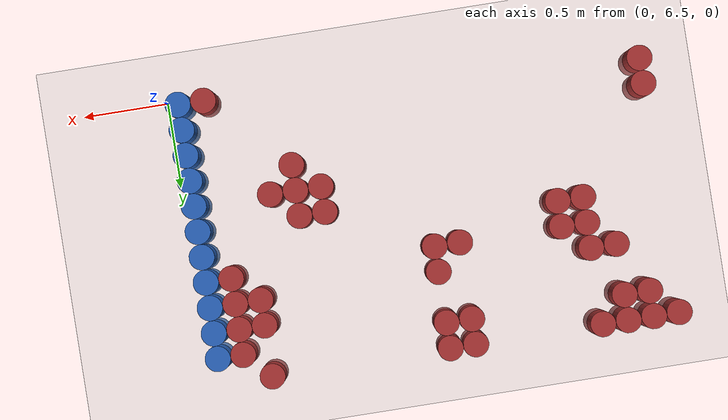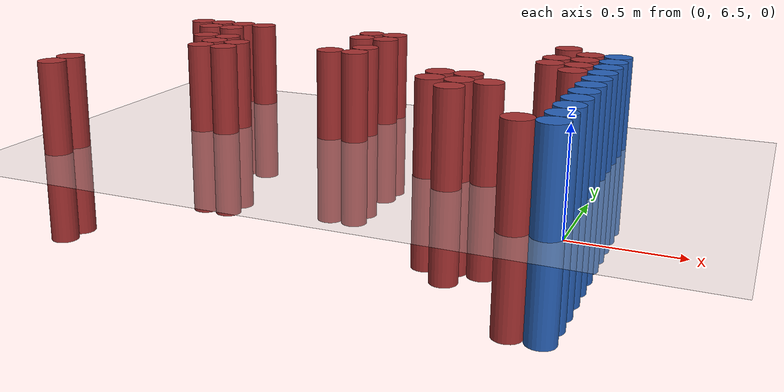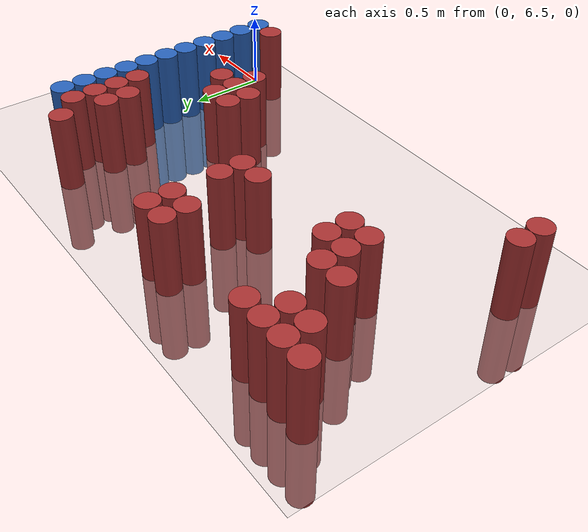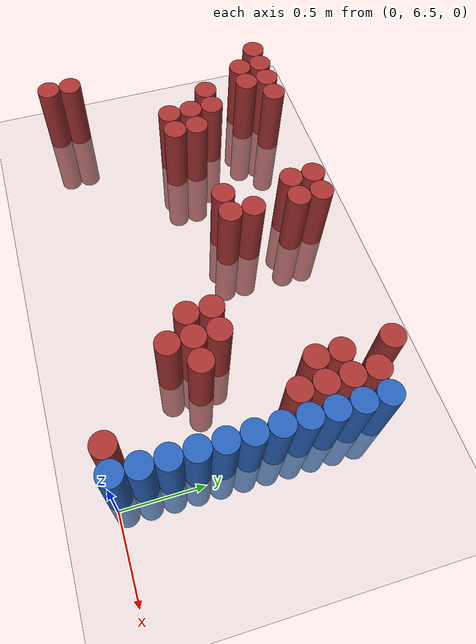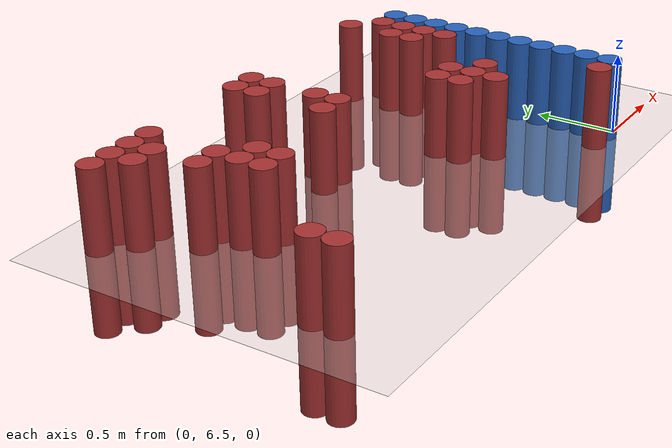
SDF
<sdf version="1.6">
 <world name="default">
  <model name="ground_plane">
   <static>1</static>
   <link name="link">
    <collision name="collision">
     <geometry><plane><normal>0 0 1</normal><size>100 100</size></plane></geometry>
     <surface><friction><ode><mu>100</mu><mu2>50</mu2></ode></friction></surface>
    </collision>
    <visual name="visual">
     <cast_shadows>0</cast_shadows>
     <geometry><plane><normal>0 0 1</normal><size>100 100</size></plane></geometry>
     <material>
      <script><uri>file://media/materials/scripts/gazebo.material</uri><name>Gazebo/Grey</name></script>
     </material>
    </visual>
   </link>
  </model>
  <model name="unit_cylinder_160">
   <static>1</static>
   <pose>-2.775000 6.675000 0.000000 0.000000 0.000000 0.000000</pose>
   <link name="link">
    <inertial>
     <mass>1</mass>
     <inertia><ixx>0.145833</ixx><ixy>0</ixy><ixz>0</ixz><iyy>0.145833</iyy><iyz>0</iyz><izz>0.125</izz></inertia>
    </inertial>
    <collision name="collision">
     <geometry><cylinder><radius>0.075000</radius><length>1</length></cylinder></geometry>
    </collision>
    <visual name="visual">
     <geometry><cylinder><radius>0.075000</radius><length>1</length></cylinder></geometry>
     <material>
      <ambient>0.648000 0.192000 0.192000 1</ambient>
      <diffuse>0.648000 0.192000 0.192000 1</diffuse>
     </material>
     <material>
      <script><name>Gazebo/Grey</name><uri>file://media/materials/scripts/gazebo.material</uri></script>
     </material>
    </visual>
   </link>
  </model>
  <model name="unit_cylinder_161">
   <static>1</static>
   <pose>-2.775000 6.825000 0.000000 0.000000 0.000000 0.000000</pose>
   <link name="link">
    <inertial>
     <mass>1</mass>
     <inertia><ixx>0.145833</ixx><ixy>0</ixy><ixz>0</ixz><iyy>0.145833</iyy><iyz>0</iyz><izz>0.125</izz></inertia>
    </inertial>
    <collision name="collision">
     <geometry><cylinder><radius>0.075000</radius><length>1</length></cylinder></geometry>
    </collision>
    <visual name="visual">
     <geometry><cylinder><radius>0.075000</radius><length>1</length></cylinder></geometry>
     <material>
      <ambient>0.648000 0.192000 0.192000 1</ambient>
      <diffuse>0.648000 0.192000 0.192000 1</diffuse>
     </material>
     <material>
      <script><name>Gazebo/Grey</name><uri>file://media/materials/scripts/gazebo.material</uri></script>
     </material>
    </visual>
   </link>
  </model>
  <model name="unit_cylinder_162">
   <static>1</static>
   <pose>-2.775000 8.175000 0.000000 0.000000 0.000000 0.000000</pose>
   <link name="link">
    <inertial>
     <mass>1</mass>
     <inertia><ixx>0.145833</ixx><ixy>0</ixy><ixz>0</ixz><iyy>0.145833</iyy><iyz>0</iyz><izz>0.125</izz></inertia>
    </inertial>
    <collision name="collision">
     <geometry><cylinder><radius>0.075000</radius><length>1</length></cylinder></geometry>
    </collision>
    <visual name="visual">
     <geometry><cylinder><radius>0.075000</radius><length>1</length></cylinder></geometry>
     <material>
      <ambient>0.648000 0.192000 0.192000 1</ambient>
      <diffuse>0.648000 0.192000 0.192000 1</diffuse>
     </material>
     <material>
      <script><name>Gazebo/Grey</name><uri>file://media/materials/scripts/gazebo.material</uri></script>
     </material>
    </visual>
   </link>
  </model>
  <model name="unit_cylinder_165">
   <static>1</static>
   <pose>-2.625000 8.025000 0.000000 0.000000 0.000000 0.000000</pose>
   <link name="link">
    <inertial>
     <mass>1</mass>
     <inertia><ixx>0.145833</ixx><ixy>0</ixy><ixz>0</ixz><iyy>0.145833</iyy><iyz>0</iyz><izz>0.125</izz></inertia>
    </inertial>
    <collision name="collision">
     <geometry><cylinder><radius>0.075000</radius><length>1</length></cylinder></geometry>
    </collision>
    <visual name="visual">
     <geometry><cylinder><radius>0.075000</radius><length>1</length></cylinder></geometry>
     <material>
      <ambient>0.648000 0.192000 0.192000 1</ambient>
      <diffuse>0.648000 0.192000 0.192000 1</diffuse>
     </material>
     <material>
      <script><name>Gazebo/Grey</name><uri>file://media/materials/scripts/gazebo.material</uri></script>
     </material>
    </visual>
   </link>
  </model>
  <model name="unit_cylinder_166">
   <static>1</static>
   <pose>-2.625000 8.175000 0.000000 0.000000 0.000000 0.000000</pose>
   <link name="link">
    <inertial>
     <mass>1</mass>
     <inertia><ixx>0.145833</ixx><ixy>0</ixy><ixz>0</ixz><iyy>0.145833</iyy><iyz>0</iyz><izz>0.125</izz></inertia>
    </inertial>
    <collision name="collision">
     <geometry><cylinder><radius>0.075000</radius><length>1</length></cylinder></geometry>
    </collision>
    <visual name="visual">
     <geometry><cylinder><radius>0.075000</radius><length>1</length></cylinder></geometry>
     <material>
      <ambient>0.648000 0.192000 0.192000 1</ambient>
      <diffuse>0.648000 0.192000 0.192000 1</diffuse>
     </material>
     <material>
      <script><name>Gazebo/Grey</name><uri>file://media/materials/scripts/gazebo.material</uri></script>
     </material>
    </visual>
   </link>
  </model>
  <model name="unit_cylinder_170">
   <static>1</static>
   <pose>-2.475000 7.725000 0.000000 0.000000 0.000000 0.000000</pose>
   <link name="link">
    <inertial>
     <mass>1</mass>
     <inertia><ixx>0.145833</ixx><ixy>0</ixy><ixz>0</ixz><iyy>0.145833</iyy><iyz>0</iyz><izz>0.125</izz></inertia>
    </inertial>
    <collision name="collision">
     <geometry><cylinder><radius>0.075000</radius><length>1</length></cylinder></geometry>
    </collision>
    <visual name="visual">
     <geometry><cylinder><radius>0.075000</radius><length>1</length></cylinder></geometry>
     <material>
      <ambient>0.648000 0.192000 0.192000 1</ambient>
      <diffuse>0.648000 0.192000 0.192000 1</diffuse>
     </material>
     <material>
      <script><name>Gazebo/Grey</name><uri>file://media/materials/scripts/gazebo.material</uri></script>
     </material>
    </visual>
   </link>
  </model>
  <model name="unit_cylinder_171">
   <static>1</static>
   <pose>-2.475000 8.025000 0.000000 0.000000 0.000000 0.000000</pose>
   <link name="link">
    <inertial>
     <mass>1</mass>
     <inertia><ixx>0.145833</ixx><ixy>0</ixy><ixz>0</ixz><iyy>0.145833</iyy><iyz>0</iyz><izz>0.125</izz></inertia>
    </inertial>
    <collision name="collision">
     <geometry><cylinder><radius>0.075000</radius><length>1</length></cylinder></geometry>
    </collision>
    <visual name="visual">
     <geometry><cylinder><radius>0.075000</radius><length>1</length></cylinder></geometry>
     <material>
      <ambient>0.648000 0.192000 0.192000 1</ambient>
      <diffuse>0.648000 0.192000 0.192000 1</diffuse>
     </material>
     <material>
      <script><name>Gazebo/Grey</name><uri>file://media/materials/scripts/gazebo.material</uri></script>
     </material>
    </visual>
   </link>
  </model>
  <model name="unit_cylinder_172">
   <static>1</static>
   <pose>-2.475000 8.175000 0.000000 0.000000 0.000000 0.000000</pose>
   <link name="link">
    <inertial>
     <mass>1</mass>
     <inertia><ixx>0.145833</ixx><ixy>0</ixy><ixz>0</ixz><iyy>0.145833</iyy><iyz>0</iyz><izz>0.125</izz></inertia>
    </inertial>
    <collision name="collision">
     <geometry><cylinder><radius>0.075000</radius><length>1</length></cylinder></geometry>
    </collision>
    <visual name="visual">
     <geometry><cylinder><radius>0.075000</radius><length>1</length></cylinder></geometry>
     <material>
      <ambient>0.648000 0.192000 0.192000 1</ambient>
      <diffuse>0.648000 0.192000 0.192000 1</diffuse>
     </material>
     <material>
      <script><name>Gazebo/Grey</name><uri>file://media/materials/scripts/gazebo.material</uri></script>
     </material>
    </visual>
   </link>
  </model>
  <model name="unit_cylinder_179">
   <static>1</static>
   <pose>-2.325000 7.425000 0.000000 0.000000 0.000000 0.000000</pose>
   <link name="link">
    <inertial>
     <mass>1</mass>
     <inertia><ixx>0.145833</ixx><ixy>0</ixy><ixz>0</ixz><iyy>0.145833</iyy><iyz>0</iyz><izz>0.125</izz></inertia>
    </inertial>
    <collision name="collision">
     <geometry><cylinder><radius>0.075000</radius><length>1</length></cylinder></geometry>
    </collision>
    <visual name="visual">
     <geometry><cylinder><radius>0.075000</radius><length>1</length></cylinder></geometry>
     <material>
      <ambient>0.648000 0.192000 0.192000 1</ambient>
      <diffuse>0.648000 0.192000 0.192000 1</diffuse>
     </material>
     <material>
      <script><name>Gazebo/Grey</name><uri>file://media/materials/scripts/gazebo.material</uri></script>
     </material>
    </visual>
   </link>
  </model>
  <model name="unit_cylinder_180">
   <static>1</static>
   <pose>-2.325000 7.575000 0.000000 0.000000 0.000000 0.000000</pose>
   <link name="link">
    <inertial>
     <mass>1</mass>
     <inertia><ixx>0.145833</ixx><ixy>0</ixy><ixz>0</ixz><iyy>0.145833</iyy><iyz>0</iyz><izz>0.125</izz></inertia>
    </inertial>
    <collision name="collision">
     <geometry><cylinder><radius>0.075000</radius><length>1</length></cylinder></geometry>
    </collision>
    <visual name="visual">
     <geometry><cylinder><radius>0.075000</radius><length>1</length></cylinder></geometry>
     <material>
      <ambient>0.648000 0.192000 0.192000 1</ambient>
      <diffuse>0.648000 0.192000 0.192000 1</diffuse>
     </material>
     <material>
      <script><name>Gazebo/Grey</name><uri>file://media/materials/scripts/gazebo.material</uri></script>
     </material>
    </visual>
   </link>
  </model>
  <model name="unit_cylinder_181">
   <static>1</static>
   <pose>-2.325000 7.725000 0.000000 0.000000 0.000000 0.000000</pose>
   <link name="link">
    <inertial>
     <mass>1</mass>
     <inertia><ixx>0.145833</ixx><ixy>0</ixy><ixz>0</ixz><iyy>0.145833</iyy><iyz>0</iyz><izz>0.125</izz></inertia>
    </inertial>
    <collision name="collision">
     <geometry><cylinder><radius>0.075000</radius><length>1</length></cylinder></geometry>
    </collision>
    <visual name="visual">
     <geometry><cylinder><radius>0.075000</radius><length>1</length></cylinder></geometry>
     <material>
      <ambient>0.648000 0.192000 0.192000 1</ambient>
      <diffuse>0.648000 0.192000 0.192000 1</diffuse>
     </material>
     <material>
      <script><name>Gazebo/Grey</name><uri>file://media/materials/scripts/gazebo.material</uri></script>
     </material>
    </visual>
   </link>
  </model>
  <model name="unit_cylinder_182">
   <static>1</static>
   <pose>-2.325000 8.175000 0.000000 0.000000 0.000000 0.000000</pose>
   <link name="link">
    <inertial>
     <mass>1</mass>
     <inertia><ixx>0.145833</ixx><ixy>0</ixy><ixz>0</ixz><iyy>0.145833</iyy><iyz>0</iyz><izz>0.125</izz></inertia>
    </inertial>
    <collision name="collision">
     <geometry><cylinder><radius>0.075000</radius><length>1</length></cylinder></geometry>
    </collision>
    <visual name="visual">
     <geometry><cylinder><radius>0.075000</radius><length>1</length></cylinder></geometry>
     <material>
      <ambient>0.648000 0.192000 0.192000 1</ambient>
      <diffuse>0.648000 0.192000 0.192000 1</diffuse>
     </material>
     <material>
      <script><name>Gazebo/Grey</name><uri>file://media/materials/scripts/gazebo.material</uri></script>
     </material>
    </visual>
   </link>
  </model>
  <model name="unit_cylinder_185">
   <static>1</static>
   <pose>-2.175000 7.425000 0.000000 0.000000 0.000000 0.000000</pose>
   <link name="link">
    <inertial>
     <mass>1</mass>
     <inertia><ixx>0.145833</ixx><ixy>0</ixy><ixz>0</ixz><iyy>0.145833</iyy><iyz>0</iyz><izz>0.125</izz></inertia>
    </inertial>
    <collision name="collision">
     <geometry><cylinder><radius>0.075000</radius><length>1</length></cylinder></geometry>
    </collision>
    <visual name="visual">
     <geometry><cylinder><radius>0.075000</radius><length>1</length></cylinder></geometry>
     <material>
      <ambient>0.648000 0.192000 0.192000 1</ambient>
      <diffuse>0.648000 0.192000 0.192000 1</diffuse>
     </material>
     <material>
      <script><name>Gazebo/Grey</name><uri>file://media/materials/scripts/gazebo.material</uri></script>
     </material>
    </visual>
   </link>
  </model>
  <model name="unit_cylinder_186">
   <static>1</static>
   <pose>-2.175000 7.575000 0.000000 0.000000 0.000000 0.000000</pose>
   <link name="link">
    <inertial>
     <mass>1</mass>
     <inertia><ixx>0.145833</ixx><ixy>0</ixy><ixz>0</ixz><iyy>0.145833</iyy><iyz>0</iyz><izz>0.125</izz></inertia>
    </inertial>
    <collision name="collision">
     <geometry><cylinder><radius>0.075000</radius><length>1</length></cylinder></geometry>
    </collision>
    <visual name="visual">
     <geometry><cylinder><radius>0.075000</radius><length>1</length></cylinder></geometry>
     <material>
      <ambient>0.648000 0.192000 0.192000 1</ambient>
      <diffuse>0.648000 0.192000 0.192000 1</diffuse>
     </material>
     <material>
      <script><name>Gazebo/Grey</name><uri>file://media/materials/scripts/gazebo.material</uri></script>
     </material>
    </visual>
   </link>
  </model>
  <model name="unit_cylinder_200">
   <static>1</static>
   <pose>-1.575000 7.575000 0.000000 0.000000 0.000000 0.000000</pose>
   <link name="link">
    <inertial>
     <mass>1</mass>
     <inertia><ixx>0.145833</ixx><ixy>0</ixy><ixz>0</ixz><iyy>0.145833</iyy><iyz>0</iyz><izz>0.125</izz></inertia>
    </inertial>
    <collision name="collision">
     <geometry><cylinder><radius>0.075000</radius><length>1</length></cylinder></geometry>
    </collision>
    <visual name="visual">
     <geometry><cylinder><radius>0.075000</radius><length>1</length></cylinder></geometry>
     <material>
      <ambient>0.648000 0.192000 0.192000 1</ambient>
      <diffuse>0.648000 0.192000 0.192000 1</diffuse>
     </material>
     <material>
      <script><name>Gazebo/Grey</name><uri>file://media/materials/scripts/gazebo.material</uri></script>
     </material>
    </visual>
   </link>
  </model>
  <model name="unit_cylinder_201">
   <static>1</static>
   <pose>-1.575000 8.025000 0.000000 0.000000 0.000000 0.000000</pose>
   <link name="link">
    <inertial>
     <mass>1</mass>
     <inertia><ixx>0.145833</ixx><ixy>0</ixy><ixz>0</ixz><iyy>0.145833</iyy><iyz>0</iyz><izz>0.125</izz></inertia>
    </inertial>
    <collision name="collision">
     <geometry><cylinder><radius>0.075000</radius><length>1</length></cylinder></geometry>
    </collision>
    <visual name="visual">
     <geometry><cylinder><radius>0.075000</radius><length>1</length></cylinder></geometry>
     <material>
      <ambient>0.648000 0.192000 0.192000 1</ambient>
      <diffuse>0.648000 0.192000 0.192000 1</diffuse>
     </material>
     <material>
      <script><name>Gazebo/Grey</name><uri>file://media/materials/scripts/gazebo.material</uri></script>
     </material>
    </visual>
   </link>
  </model>
  <model name="unit_cylinder_202">
   <static>1</static>
   <pose>-1.575000 8.175000 0.000000 0.000000 0.000000 0.000000</pose>
   <link name="link">
    <inertial>
     <mass>1</mass>
     <inertia><ixx>0.145833</ixx><ixy>0</ixy><ixz>0</ixz><iyy>0.145833</iyy><iyz>0</iyz><izz>0.125</izz></inertia>
    </inertial>
    <collision name="collision">
     <geometry><cylinder><radius>0.075000</radius><length>1</length></cylinder></geometry>
    </collision>
    <visual name="visual">
     <geometry><cylinder><radius>0.075000</radius><length>1</length></cylinder></geometry>
     <material>
      <ambient>0.648000 0.192000 0.192000 1</ambient>
      <diffuse>0.648000 0.192000 0.192000 1</diffuse>
     </material>
     <material>
      <script><name>Gazebo/Grey</name><uri>file://media/materials/scripts/gazebo.material</uri></script>
     </material>
    </visual>
   </link>
  </model>
  <model name="unit_cylinder_207">
   <static>1</static>
   <pose>-1.425000 7.575000 0.000000 0.000000 0.000000 0.000000</pose>
   <link name="link">
    <inertial>
     <mass>1</mass>
     <inertia><ixx>0.145833</ixx><ixy>0</ixy><ixz>0</ixz><iyy>0.145833</iyy><iyz>0</iyz><izz>0.125</izz></inertia>
    </inertial>
    <collision name="collision">
     <geometry><cylinder><radius>0.075000</radius><length>1</length></cylinder></geometry>
    </collision>
    <visual name="visual">
     <geometry><cylinder><radius>0.075000</radius><length>1</length></cylinder></geometry>
     <material>
      <ambient>0.648000 0.192000 0.192000 1</ambient>
      <diffuse>0.648000 0.192000 0.192000 1</diffuse>
     </material>
     <material>
      <script><name>Gazebo/Grey</name><uri>file://media/materials/scripts/gazebo.material</uri></script>
     </material>
    </visual>
   </link>
  </model>
  <model name="unit_cylinder_208">
   <static>1</static>
   <pose>-1.425000 7.725000 0.000000 0.000000 0.000000 0.000000</pose>
   <link name="link">
    <inertial>
     <mass>1</mass>
     <inertia><ixx>0.145833</ixx><ixy>0</ixy><ixz>0</ixz><iyy>0.145833</iyy><iyz>0</iyz><izz>0.125</izz></inertia>
    </inertial>
    <collision name="collision">
     <geometry><cylinder><radius>0.075000</radius><length>1</length></cylinder></geometry>
    </collision>
    <visual name="visual">
     <geometry><cylinder><radius>0.075000</radius><length>1</length></cylinder></geometry>
     <material>
      <ambient>0.648000 0.192000 0.192000 1</ambient>
      <diffuse>0.648000 0.192000 0.192000 1</diffuse>
     </material>
     <material>
      <script><name>Gazebo/Grey</name><uri>file://media/materials/scripts/gazebo.material</uri></script>
     </material>
    </visual>
   </link>
  </model>
  <model name="unit_cylinder_209">
   <static>1</static>
   <pose>-1.425000 8.025000 0.000000 0.000000 0.000000 0.000000</pose>
   <link name="link">
    <inertial>
     <mass>1</mass>
     <inertia><ixx>0.145833</ixx><ixy>0</ixy><ixz>0</ixz><iyy>0.145833</iyy><iyz>0</iyz><izz>0.125</izz></inertia>
    </inertial>
    <collision name="collision">
     <geometry><cylinder><radius>0.075000</radius><length>1</length></cylinder></geometry>
    </collision>
    <visual name="visual">
     <geometry><cylinder><radius>0.075000</radius><length>1</length></cylinder></geometry>
     <material>
      <ambient>0.648000 0.192000 0.192000 1</ambient>
      <diffuse>0.648000 0.192000 0.192000 1</diffuse>
     </material>
     <material>
      <script><name>Gazebo/Grey</name><uri>file://media/materials/scripts/gazebo.material</uri></script>
     </material>
    </visual>
   </link>
  </model>
  <model name="unit_cylinder_210">
   <static>1</static>
   <pose>-1.425000 8.175000 0.000000 0.000000 0.000000 0.000000</pose>
   <link name="link">
    <inertial>
     <mass>1</mass>
     <inertia><ixx>0.145833</ixx><ixy>0</ixy><ixz>0</ixz><iyy>0.145833</iyy><iyz>0</iyz><izz>0.125</izz></inertia>
    </inertial>
    <collision name="collision">
     <geometry><cylinder><radius>0.075000</radius><length>1</length></cylinder></geometry>
    </collision>
    <visual name="visual">
     <geometry><cylinder><radius>0.075000</radius><length>1</length></cylinder></geometry>
     <material>
      <ambient>0.648000 0.192000 0.192000 1</ambient>
      <diffuse>0.648000 0.192000 0.192000 1</diffuse>
     </material>
     <material>
      <script><name>Gazebo/Grey</name><uri>file://media/materials/scripts/gazebo.material</uri></script>
     </material>
    </visual>
   </link>
  </model>
  <model name="unit_cylinder_214">
   <static>1</static>
   <pose>-0.825000 7.125000 0.000000 0.000000 0.000000 0.000000</pose>
   <link name="link">
    <inertial>
     <mass>1</mass>
     <inertia><ixx>0.145833</ixx><ixy>0</ixy><ixz>0</ixz><iyy>0.145833</iyy><iyz>0</iyz><izz>0.125</izz></inertia>
    </inertial>
    <collision name="collision">
     <geometry><cylinder><radius>0.075000</radius><length>1</length></cylinder></geometry>
    </collision>
    <visual name="visual">
     <geometry><cylinder><radius>0.075000</radius><length>1</length></cylinder></geometry>
     <material>
      <ambient>0.648000 0.192000 0.192000 1</ambient>
      <diffuse>0.648000 0.192000 0.192000 1</diffuse>
     </material>
     <material>
      <script><name>Gazebo/Grey</name><uri>file://media/materials/scripts/gazebo.material</uri></script>
     </material>
    </visual>
   </link>
  </model>
  <model name="unit_cylinder_215">
   <static>1</static>
   <pose>-0.825000 7.275000 0.000000 0.000000 0.000000 0.000000</pose>
   <link name="link">
    <inertial>
     <mass>1</mass>
     <inertia><ixx>0.145833</ixx><ixy>0</ixy><ixz>0</ixz><iyy>0.145833</iyy><iyz>0</iyz><izz>0.125</izz></inertia>
    </inertial>
    <collision name="collision">
     <geometry><cylinder><radius>0.075000</radius><length>1</length></cylinder></geometry>
    </collision>
    <visual name="visual">
     <geometry><cylinder><radius>0.075000</radius><length>1</length></cylinder></geometry>
     <material>
      <ambient>0.648000 0.192000 0.192000 1</ambient>
      <diffuse>0.648000 0.192000 0.192000 1</diffuse>
     </material>
     <material>
      <script><name>Gazebo/Grey</name><uri>file://media/materials/scripts/gazebo.material</uri></script>
     </material>
    </visual>
   </link>
  </model>
  <model name="unit_cylinder_216">
   <static>1</static>
   <pose>-0.675000 6.975000 0.000000 0.000000 0.000000 0.000000</pose>
   <link name="link">
    <inertial>
     <mass>1</mass>
     <inertia><ixx>0.145833</ixx><ixy>0</ixy><ixz>0</ixz><iyy>0.145833</iyy><iyz>0</iyz><izz>0.125</izz></inertia>
    </inertial>
    <collision name="collision">
     <geometry><cylinder><radius>0.075000</radius><length>1</length></cylinder></geometry>
    </collision>
    <visual name="visual">
     <geometry><cylinder><radius>0.075000</radius><length>1</length></cylinder></geometry>
     <material>
      <ambient>0.648000 0.192000 0.192000 1</ambient>
      <diffuse>0.648000 0.192000 0.192000 1</diffuse>
     </material>
     <material>
      <script><name>Gazebo/Grey</name><uri>file://media/materials/scripts/gazebo.material</uri></script>
     </material>
    </visual>
   </link>
  </model>
  <model name="unit_cylinder_217">
   <static>1</static>
   <pose>-0.675000 7.125000 0.000000 0.000000 0.000000 0.000000</pose>
   <link name="link">
    <inertial>
     <mass>1</mass>
     <inertia><ixx>0.145833</ixx><ixy>0</ixy><ixz>0</ixz><iyy>0.145833</iyy><iyz>0</iyz><izz>0.125</izz></inertia>
    </inertial>
    <collision name="collision">
     <geometry><cylinder><radius>0.075000</radius><length>1</length></cylinder></geometry>
    </collision>
    <visual name="visual">
     <geometry><cylinder><radius>0.075000</radius><length>1</length></cylinder></geometry>
     <material>
      <ambient>0.648000 0.192000 0.192000 1</ambient>
      <diffuse>0.648000 0.192000 0.192000 1</diffuse>
     </material>
     <material>
      <script><name>Gazebo/Grey</name><uri>file://media/materials/scripts/gazebo.material</uri></script>
     </material>
    </visual>
   </link>
  </model>
  <model name="unit_cylinder_218">
   <static>1</static>
   <pose>-0.675000 7.275000 0.000000 0.000000 0.000000 0.000000</pose>
   <link name="link">
    <inertial>
     <mass>1</mass>
     <inertia><ixx>0.145833</ixx><ixy>0</ixy><ixz>0</ixz><iyy>0.145833</iyy><iyz>0</iyz><izz>0.125</izz></inertia>
    </inertial>
    <collision name="collision">
     <geometry><cylinder><radius>0.075000</radius><length>1</length></cylinder></geometry>
    </collision>
    <visual name="visual">
     <geometry><cylinder><radius>0.075000</radius><length>1</length></cylinder></geometry>
     <material>
      <ambient>0.648000 0.192000 0.192000 1</ambient>
      <diffuse>0.648000 0.192000 0.192000 1</diffuse>
     </material>
     <material>
      <script><name>Gazebo/Grey</name><uri>file://media/materials/scripts/gazebo.material</uri></script>
     </material>
    </visual>
   </link>
  </model>
  <model name="unit_cylinder_219">
   <static>1</static>
   <pose>-0.525000 7.125000 0.000000 0.000000 0.000000 0.000000</pose>
   <link name="link">
    <inertial>
     <mass>1</mass>
     <inertia><ixx>0.145833</ixx><ixy>0</ixy><ixz>0</ixz><iyy>0.145833</iyy><iyz>0</iyz><izz>0.125</izz></inertia>
    </inertial>
    <collision name="collision">
     <geometry><cylinder><radius>0.075000</radius><length>1</length></cylinder></geometry>
    </collision>
    <visual name="visual">
     <geometry><cylinder><radius>0.075000</radius><length>1</length></cylinder></geometry>
     <material>
      <ambient>0.648000 0.192000 0.192000 1</ambient>
      <diffuse>0.648000 0.192000 0.192000 1</diffuse>
     </material>
     <material>
      <script><name>Gazebo/Grey</name><uri>file://media/materials/scripts/gazebo.material</uri></script>
     </material>
    </visual>
   </link>
  </model>
  <model name="unit_cylinder_223">
   <static>1</static>
   <pose>-0.375000 7.725000 0.000000 0.000000 0.000000 0.000000</pose>
   <link name="link">
    <inertial>
     <mass>1</mass>
     <inertia><ixx>0.145833</ixx><ixy>0</ixy><ixz>0</ixz><iyy>0.145833</iyy><iyz>0</iyz><izz>0.125</izz></inertia>
    </inertial>
    <collision name="collision">
     <geometry><cylinder><radius>0.075000</radius><length>1</length></cylinder></geometry>
    </collision>
    <visual name="visual">
     <geometry><cylinder><radius>0.075000</radius><length>1</length></cylinder></geometry>
     <material>
      <ambient>0.648000 0.192000 0.192000 1</ambient>
      <diffuse>0.648000 0.192000 0.192000 1</diffuse>
     </material>
     <material>
      <script><name>Gazebo/Grey</name><uri>file://media/materials/scripts/gazebo.material</uri></script>
     </material>
    </visual>
   </link>
  </model>
  <model name="unit_cylinder_224">
   <static>1</static>
   <pose>-0.375000 7.875000 0.000000 0.000000 0.000000 0.000000</pose>
   <link name="link">
    <inertial>
     <mass>1</mass>
     <inertia><ixx>0.145833</ixx><ixy>0</ixy><ixz>0</ixz><iyy>0.145833</iyy><iyz>0</iyz><izz>0.125</izz></inertia>
    </inertial>
    <collision name="collision">
     <geometry><cylinder><radius>0.075000</radius><length>1</length></cylinder></geometry>
    </collision>
    <visual name="visual">
     <geometry><cylinder><radius>0.075000</radius><length>1</length></cylinder></geometry>
     <material>
      <ambient>0.648000 0.192000 0.192000 1</ambient>
      <diffuse>0.648000 0.192000 0.192000 1</diffuse>
     </material>
     <material>
      <script><name>Gazebo/Grey</name><uri>file://media/materials/scripts/gazebo.material</uri></script>
     </material>
    </visual>
   </link>
  </model>
  <model name="unit_cylinder_225">
   <static>1</static>
   <pose>-0.375000 8.175000 0.000000 0.000000 0.000000 0.000000</pose>
   <link name="link">
    <inertial>
     <mass>1</mass>
     <inertia><ixx>0.145833</ixx><ixy>0</ixy><ixz>0</ixz><iyy>0.145833</iyy><iyz>0</iyz><izz>0.125</izz></inertia>
    </inertial>
    <collision name="collision">
     <geometry><cylinder><radius>0.075000</radius><length>1</length></cylinder></geometry>
    </collision>
    <visual name="visual">
     <geometry><cylinder><radius>0.075000</radius><length>1</length></cylinder></geometry>
     <material>
      <ambient>0.648000 0.192000 0.192000 1</ambient>
      <diffuse>0.648000 0.192000 0.192000 1</diffuse>
     </material>
     <material>
      <script><name>Gazebo/Grey</name><uri>file://media/materials/scripts/gazebo.material</uri></script>
     </material>
    </visual>
   </link>
  </model>
  <model name="unit_cylinder_234">
   <static>1</static>
   <pose>-0.225000 6.525000 0.000000 0.000000 0.000000 0.000000</pose>
   <link name="link">
    <inertial>
     <mass>1</mass>
     <inertia><ixx>0.145833</ixx><ixy>0</ixy><ixz>0</ixz><iyy>0.145833</iyy><iyz>0</iyz><izz>0.125</izz></inertia>
    </inertial>
    <collision name="collision">
     <geometry><cylinder><radius>0.075000</radius><length>1</length></cylinder></geometry>
    </collision>
    <visual name="visual">
     <geometry><cylinder><radius>0.075000</radius><length>1</length></cylinder></geometry>
     <material>
      <ambient>0.648000 0.192000 0.192000 1</ambient>
      <diffuse>0.648000 0.192000 0.192000 1</diffuse>
     </material>
     <material>
      <script><name>Gazebo/Grey</name><uri>file://media/materials/scripts/gazebo.material</uri></script>
     </material>
    </visual>
   </link>
  </model>
  <model name="unit_cylinder_235">
   <static>1</static>
   <pose>-0.225000 7.575000 0.000000 0.000000 0.000000 0.000000</pose>
   <link name="link">
    <inertial>
     <mass>1</mass>
     <inertia><ixx>0.145833</ixx><ixy>0</ixy><ixz>0</ixz><iyy>0.145833</iyy><iyz>0</iyz><izz>0.125</izz></inertia>
    </inertial>
    <collision name="collision">
     <geometry><cylinder><radius>0.075000</radius><length>1</length></cylinder></geometry>
    </collision>
    <visual name="visual">
     <geometry><cylinder><radius>0.075000</radius><length>1</length></cylinder></geometry>
     <material>
      <ambient>0.648000 0.192000 0.192000 1</ambient>
      <diffuse>0.648000 0.192000 0.192000 1</diffuse>
     </material>
     <material>
      <script><name>Gazebo/Grey</name><uri>file://media/materials/scripts/gazebo.material</uri></script>
     </material>
    </visual>
   </link>
  </model>
  <model name="unit_cylinder_236">
   <static>1</static>
   <pose>-0.225000 7.725000 0.000000 0.000000 0.000000 0.000000</pose>
   <link name="link">
    <inertial>
     <mass>1</mass>
     <inertia><ixx>0.145833</ixx><ixy>0</ixy><ixz>0</ixz><iyy>0.145833</iyy><iyz>0</iyz><izz>0.125</izz></inertia>
    </inertial>
    <collision name="collision">
     <geometry><cylinder><radius>0.075000</radius><length>1</length></cylinder></geometry>
    </collision>
    <visual name="visual">
     <geometry><cylinder><radius>0.075000</radius><length>1</length></cylinder></geometry>
     <material>
      <ambient>0.648000 0.192000 0.192000 1</ambient>
      <diffuse>0.648000 0.192000 0.192000 1</diffuse>
     </material>
     <material>
      <script><name>Gazebo/Grey</name><uri>file://media/materials/scripts/gazebo.material</uri></script>
     </material>
    </visual>
   </link>
  </model>
  <model name="unit_cylinder_237">
   <static>1</static>
   <pose>-0.225000 7.875000 0.000000 0.000000 0.000000 0.000000</pose>
   <link name="link">
    <inertial>
     <mass>1</mass>
     <inertia><ixx>0.145833</ixx><ixy>0</ixy><ixz>0</ixz><iyy>0.145833</iyy><iyz>0</iyz><izz>0.125</izz></inertia>
    </inertial>
    <collision name="collision">
     <geometry><cylinder><radius>0.075000</radius><length>1</length></cylinder></geometry>
    </collision>
    <visual name="visual">
     <geometry><cylinder><radius>0.075000</radius><length>1</length></cylinder></geometry>
     <material>
      <ambient>0.648000 0.192000 0.192000 1</ambient>
      <diffuse>0.648000 0.192000 0.192000 1</diffuse>
     </material>
     <material>
      <script><name>Gazebo/Grey</name><uri>file://media/materials/scripts/gazebo.material</uri></script>
     </material>
    </visual>
   </link>
  </model>
  <model name="unit_cylinder_238">
   <static>1</static>
   <pose>-0.225000 8.025000 0.000000 0.000000 0.000000 0.000000</pose>
   <link name="link">
    <inertial>
     <mass>1</mass>
     <inertia><ixx>0.145833</ixx><ixy>0</ixy><ixz>0</ixz><iyy>0.145833</iyy><iyz>0</iyz><izz>0.125</izz></inertia>
    </inertial>
    <collision name="collision">
     <geometry><cylinder><radius>0.075000</radius><length>1</length></cylinder></geometry>
    </collision>
    <visual name="visual">
     <geometry><cylinder><radius>0.075000</radius><length>1</length></cylinder></geometry>
     <material>
      <ambient>0.648000 0.192000 0.192000 1</ambient>
      <diffuse>0.648000 0.192000 0.192000 1</diffuse>
     </material>
     <material>
      <script><name>Gazebo/Grey</name><uri>file://media/materials/scripts/gazebo.material</uri></script>
     </material>
    </visual>
   </link>
  </model>
  <model name="unit_cylinder_256">
   <static>1</static>
   <pose>-0.075000 6.525000 0.000000 0.000000 0.000000 0.000000</pose>
   <link name="link">
    <inertial>
     <mass>1</mass>
     <inertia><ixx>0.145833</ixx><ixy>0</ixy><ixz>0</ixz><iyy>0.145833</iyy><iyz>0</iyz><izz>0.125</izz></inertia>
    </inertial>
    <collision name="collision">
     <geometry><cylinder><radius>0.075000</radius><length>1</length></cylinder></geometry>
    </collision>
    <visual name="visual">
     <geometry><cylinder><radius>0.075000</radius><length>1</length></cylinder></geometry>
     <material>
      <ambient>0.152000 0.379000 0.720000 1</ambient>
      <diffuse>0.152000 0.379000 0.720000 1</diffuse>
     </material>
     <material>
      <script><name>Gazebo/Grey</name><uri>file://media/materials/scripts/gazebo.material</uri></script>
     </material>
    </visual>
   </link>
  </model>
  <model name="unit_cylinder_257">
   <static>1</static>
   <pose>-0.075000 6.675000 0.000000 0.000000 0.000000 0.000000</pose>
   <link name="link">
    <inertial>
     <mass>1</mass>
     <inertia><ixx>0.145833</ixx><ixy>0</ixy><ixz>0</ixz><iyy>0.145833</iyy><iyz>0</iyz><izz>0.125</izz></inertia>
    </inertial>
    <collision name="collision">
     <geometry><cylinder><radius>0.075000</radius><length>1</length></cylinder></geometry>
    </collision>
    <visual name="visual">
     <geometry><cylinder><radius>0.075000</radius><length>1</length></cylinder></geometry>
     <material>
      <ambient>0.152000 0.379000 0.720000 1</ambient>
      <diffuse>0.152000 0.379000 0.720000 1</diffuse>
     </material>
     <material>
      <script><name>Gazebo/Grey</name><uri>file://media/materials/scripts/gazebo.material</uri></script>
     </material>
    </visual>
   </link>
  </model>
  <model name="unit_cylinder_258">
   <static>1</static>
   <pose>-0.075000 6.825000 0.000000 0.000000 0.000000 0.000000</pose>
   <link name="link">
    <inertial>
     <mass>1</mass>
     <inertia><ixx>0.145833</ixx><ixy>0</ixy><ixz>0</ixz><iyy>0.145833</iyy><iyz>0</iyz><izz>0.125</izz></inertia>
    </inertial>
    <collision name="collision">
     <geometry><cylinder><radius>0.075000</radius><length>1</length></cylinder></geometry>
    </collision>
    <visual name="visual">
     <geometry><cylinder><radius>0.075000</radius><length>1</length></cylinder></geometry>
     <material>
      <ambient>0.152000 0.379000 0.720000 1</ambient>
      <diffuse>0.152000 0.379000 0.720000 1</diffuse>
     </material>
     <material>
      <script><name>Gazebo/Grey</name><uri>file://media/materials/scripts/gazebo.material</uri></script>
     </material>
    </visual>
   </link>
  </model>
  <model name="unit_cylinder_259">
   <static>1</static>
   <pose>-0.075000 6.975000 0.000000 0.000000 0.000000 0.000000</pose>
   <link name="link">
    <inertial>
     <mass>1</mass>
     <inertia><ixx>0.145833</ixx><ixy>0</ixy><ixz>0</ixz><iyy>0.145833</iyy><iyz>0</iyz><izz>0.125</izz></inertia>
    </inertial>
    <collision name="collision">
     <geometry><cylinder><radius>0.075000</radius><length>1</length></cylinder></geometry>
    </collision>
    <visual name="visual">
     <geometry><cylinder><radius>0.075000</radius><length>1</length></cylinder></geometry>
     <material>
      <ambient>0.152000 0.379000 0.720000 1</ambient>
      <diffuse>0.152000 0.379000 0.720000 1</diffuse>
     </material>
     <material>
      <script><name>Gazebo/Grey</name><uri>file://media/materials/scripts/gazebo.material</uri></script>
     </material>
    </visual>
   </link>
  </model>
  <model name="unit_cylinder_260">
   <static>1</static>
   <pose>-0.075000 7.125000 0.000000 0.000000 0.000000 0.000000</pose>
   <link name="link">
    <inertial>
     <mass>1</mass>
     <inertia><ixx>0.145833</ixx><ixy>0</ixy><ixz>0</ixz><iyy>0.145833</iyy><iyz>0</iyz><izz>0.125</izz></inertia>
    </inertial>
    <collision name="collision">
     <geometry><cylinder><radius>0.075000</radius><length>1</length></cylinder></geometry>
    </collision>
    <visual name="visual">
     <geometry><cylinder><radius>0.075000</radius><length>1</length></cylinder></geometry>
     <material>
      <ambient>0.152000 0.379000 0.720000 1</ambient>
      <diffuse>0.152000 0.379000 0.720000 1</diffuse>
     </material>
     <material>
      <script><name>Gazebo/Grey</name><uri>file://media/materials/scripts/gazebo.material</uri></script>
     </material>
    </visual>
   </link>
  </model>
  <model name="unit_cylinder_261">
   <static>1</static>
   <pose>-0.075000 7.275000 0.000000 0.000000 0.000000 0.000000</pose>
   <link name="link">
    <inertial>
     <mass>1</mass>
     <inertia><ixx>0.145833</ixx><ixy>0</ixy><ixz>0</ixz><iyy>0.145833</iyy><iyz>0</iyz><izz>0.125</izz></inertia>
    </inertial>
    <collision name="collision">
     <geometry><cylinder><radius>0.075000</radius><length>1</length></cylinder></geometry>
    </collision>
    <visual name="visual">
     <geometry><cylinder><radius>0.075000</radius><length>1</length></cylinder></geometry>
     <material>
      <ambient>0.152000 0.379000 0.720000 1</ambient>
      <diffuse>0.152000 0.379000 0.720000 1</diffuse>
     </material>
     <material>
      <script><name>Gazebo/Grey</name><uri>file://media/materials/scripts/gazebo.material</uri></script>
     </material>
    </visual>
   </link>
  </model>
  <model name="unit_cylinder_262">
   <static>1</static>
   <pose>-0.075000 7.425000 0.000000 0.000000 0.000000 0.000000</pose>
   <link name="link">
    <inertial>
     <mass>1</mass>
     <inertia><ixx>0.145833</ixx><ixy>0</ixy><ixz>0</ixz><iyy>0.145833</iyy><iyz>0</iyz><izz>0.125</izz></inertia>
    </inertial>
    <collision name="collision">
     <geometry><cylinder><radius>0.075000</radius><length>1</length></cylinder></geometry>
    </collision>
    <visual name="visual">
     <geometry><cylinder><radius>0.075000</radius><length>1</length></cylinder></geometry>
     <material>
      <ambient>0.152000 0.379000 0.720000 1</ambient>
      <diffuse>0.152000 0.379000 0.720000 1</diffuse>
     </material>
     <material>
      <script><name>Gazebo/Grey</name><uri>file://media/materials/scripts/gazebo.material</uri></script>
     </material>
    </visual>
   </link>
  </model>
  <model name="unit_cylinder_263">
   <static>1</static>
   <pose>-0.075000 7.575000 0.000000 0.000000 0.000000 0.000000</pose>
   <link name="link">
    <inertial>
     <mass>1</mass>
     <inertia><ixx>0.145833</ixx><ixy>0</ixy><ixz>0</ixz><iyy>0.145833</iyy><iyz>0</iyz><izz>0.125</izz></inertia>
    </inertial>
    <collision name="collision">
     <geometry><cylinder><radius>0.075000</radius><length>1</length></cylinder></geometry>
    </collision>
    <visual name="visual">
     <geometry><cylinder><radius>0.075000</radius><length>1</length></cylinder></geometry>
     <material>
      <ambient>0.152000 0.379000 0.720000 1</ambient>
      <diffuse>0.152000 0.379000 0.720000 1</diffuse>
     </material>
     <material>
      <script><name>Gazebo/Grey</name><uri>file://media/materials/scripts/gazebo.material</uri></script>
     </material>
    </visual>
   </link>
  </model>
  <model name="unit_cylinder_264">
   <static>1</static>
   <pose>-0.075000 7.725000 0.000000 0.000000 0.000000 0.000000</pose>
   <link name="link">
    <inertial>
     <mass>1</mass>
     <inertia><ixx>0.145833</ixx><ixy>0</ixy><ixz>0</ixz><iyy>0.145833</iyy><iyz>0</iyz><izz>0.125</izz></inertia>
    </inertial>
    <collision name="collision">
     <geometry><cylinder><radius>0.075000</radius><length>1</length></cylinder></geometry>
    </collision>
    <visual name="visual">
     <geometry><cylinder><radius>0.075000</radius><length>1</length></cylinder></geometry>
     <material>
      <ambient>0.152000 0.379000 0.720000 1</ambient>
      <diffuse>0.152000 0.379000 0.720000 1</diffuse>
     </material>
     <material>
      <script><name>Gazebo/Grey</name><uri>file://media/materials/scripts/gazebo.material</uri></script>
     </material>
    </visual>
   </link>
  </model>
  <model name="unit_cylinder_265">
   <static>1</static>
   <pose>-0.075000 7.875000 0.000000 0.000000 0.000000 0.000000</pose>
   <link name="link">
    <inertial>
     <mass>1</mass>
     <inertia><ixx>0.145833</ixx><ixy>0</ixy><ixz>0</ixz><iyy>0.145833</iyy><iyz>0</iyz><izz>0.125</izz></inertia>
    </inertial>
    <collision name="collision">
     <geometry><cylinder><radius>0.075000</radius><length>1</length></cylinder></geometry>
    </collision>
    <visual name="visual">
     <geometry><cylinder><radius>0.075000</radius><length>1</length></cylinder></geometry>
     <material>
      <ambient>0.152000 0.379000 0.720000 1</ambient>
      <diffuse>0.152000 0.379000 0.720000 1</diffuse>
     </material>
     <material>
      <script><name>Gazebo/Grey</name><uri>file://media/materials/scripts/gazebo.material</uri></script>
     </material>
    </visual>
   </link>
  </model>
  <model name="unit_cylinder_266">
   <static>1</static>
   <pose>-0.075000 8.025000 0.000000 0.000000 0.000000 0.000000</pose>
   <link name="link">
    <inertial>
     <mass>1</mass>
     <inertia><ixx>0.145833</ixx><ixy>0</ixy><ixz>0</ixz><iyy>0.145833</iyy><iyz>0</iyz><izz>0.125</izz></inertia>
    </inertial>
    <collision name="collision">
     <geometry><cylinder><radius>0.075000</radius><length>1</length></cylinder></geometry>
    </collision>
    <visual name="visual">
     <geometry><cylinder><radius>0.075000</radius><length>1</length></cylinder></geometry>
     <material>
      <ambient>0.152000 0.379000 0.720000 1</ambient>
      <diffuse>0.152000 0.379000 0.720000 1</diffuse>
     </material>
     <material>
      <script><name>Gazebo/Grey</name><uri>file://media/materials/scripts/gazebo.material</uri></script>
     </material>
    </visual>
   </link>
  </model>
 </world>
</sdf>
